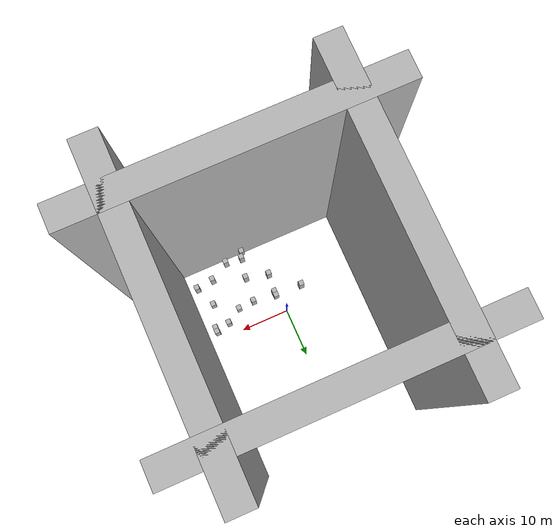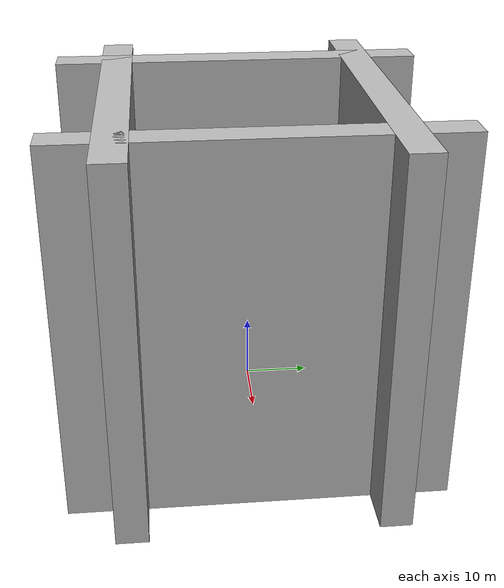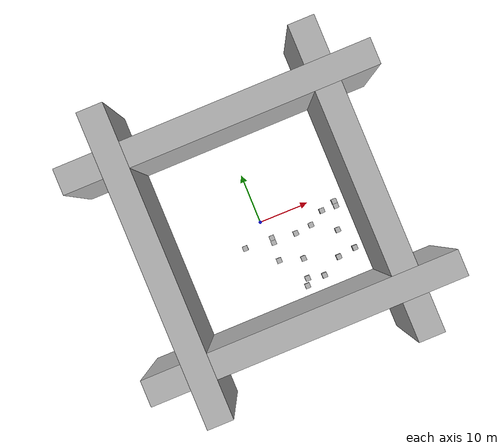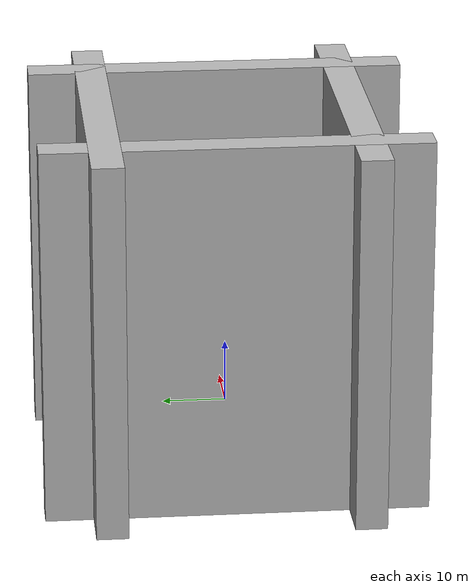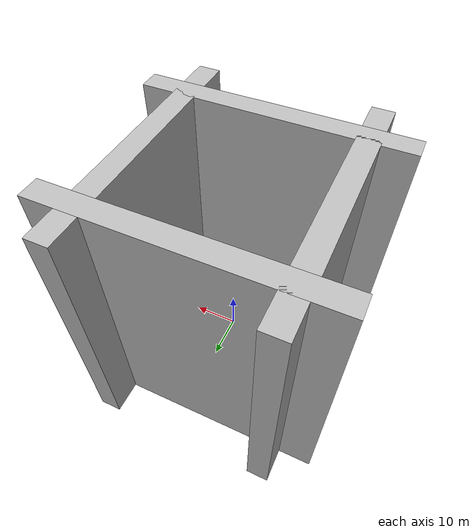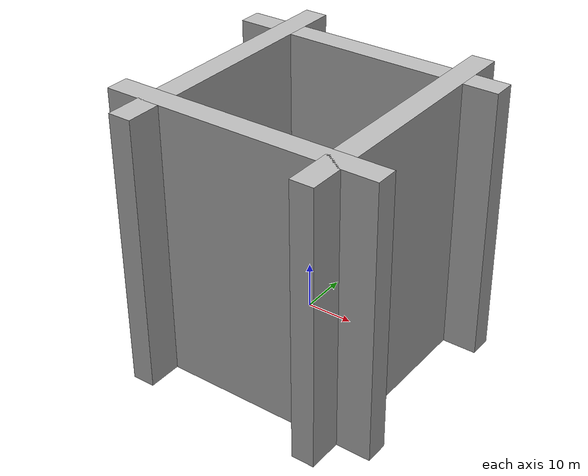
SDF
<sdf version="1.4">
 <world name="default">
  <include><uri>model://sun</uri></include>
  <model name="wall1">
   <static>1</static>
   <link name="chassis">
    <pose>-20 0 20 0 -0 0</pose>
    <collision name="collision"><geometry><box><size>5 60 60</size></box></geometry></collision>
    <visual name="visual">
     <geometry>
      <mesh><uri>model://ground_surface/meshes/simple_box.dae</uri><scale>5 60 60</scale></mesh>
     </geometry>
     <material>
      <script>
       <uri>model://ground_surface/materials/scripts</uri>
       <uri>model://ground_surface/materials/textures</uri>
       <name>BrickBox/Ground</name>
      </script>
     </material>
    </visual>
   </link>
  </model>
  <model name="wall2">
   <static>1</static>
   <link name="chassis">
    <pose>0 -20 20 0 -0 0</pose>
    <collision name="collision"><geometry><box><size>60 5 60</size></box></geometry></collision>
    <visual name="visual">
     <geometry>
      <mesh><uri>model://ground_surface/meshes/simple_box.dae</uri><scale>60 5 60</scale></mesh>
     </geometry>
     <material>
      <script>
       <uri>model://ground_surface/materials/scripts</uri>
       <uri>model://ground_surface/materials/textures</uri>
       <name>BrickBox/Ground</name>
      </script>
     </material>
    </visual>
   </link>
  </model>
  <model name="wall3">
   <static>1</static>
   <link name="chassis">
    <pose>0 20 20 0 -0 0</pose>
    <collision name="collision"><geometry><box><size>60 5 60</size></box></geometry></collision>
    <visual name="visual">
     <geometry>
      <mesh><uri>model://ground_surface/meshes/simple_box.dae</uri><scale>60 5 60</scale></mesh>
     </geometry>
     <material>
      <script>
       <uri>model://ground_surface/materials/scripts</uri>
       <uri>model://ground_surface/materials/textures</uri>
       <name>BrickBox/Ground</name>
      </script>
     </material>
    </visual>
   </link>
  </model>
  <model name="wall4">
   <static>1</static>
   <link name="chassis">
    <pose>20.0 0 20 0 -0 0</pose>
    <collision name="collision"><geometry><box><size>5 60.0 60</size></box></geometry></collision>
    <visual name="visual">
     <geometry>
      <mesh><uri>model://ground_surface/meshes/simple_box.dae</uri><scale>5 60.0 60</scale></mesh>
     </geometry>
     <material>
      <script>
       <uri>model://ground_surface/materials/scripts</uri>
       <uri>model://ground_surface/materials/textures</uri>
       <name>BrickBox/Ground</name>
      </script>
     </material>
    </visual>
   </link>
  </model>
  <model name="brick_box_2_0">
   <static>1</static>
   <link name="chassis">
    <pose>0 0 1 0 -0 0</pose>
    <collision name="collision"><geometry><box><size>1 1 2</size></box></geometry></collision>
    <visual name="visual">
     <geometry><mesh><uri>model://brick_box_2/meshes/simple_box.dae</uri><scale>1 1 2</scale></mesh></geometry>
     <material>
      <script>
       <uri>model://brick_box_2/materials/scripts</uri>
       <uri>model://brick_box_2/materials/textures</uri>
       <name>BrickBox/Flower</name>
      </script>
     </material>
    </visual>
   </link>
   <pose>15.01537 -2.67468 0 0 -0 0</pose>
  </model>
  <model name="brick_box_3_0">
   <static>1</static>
   <link name="chassis">
    <pose>-4.76455 -3.62531 2 0 -0 0</pose>
    <collision name="collision"><geometry><box><size>1 1 4</size></box></geometry></collision>
    <visual name="visual">
     <geometry><mesh><uri>model://brick_box_3/meshes/simple_box.dae</uri><scale>1 1 4</scale></mesh></geometry>
     <material>
      <script>
       <uri>model://brick_box_3/materials/scripts</uri>
       <uri>model://brick_box_3/materials/textures</uri>
       <name>BrickBox/Sea</name>
      </script>
     </material>
    </visual>
   </link>
  </model>
  <model name="brick_box_3_1">
   <static>1</static>
   <link name="chassis">
    <pose>0 0 1.5 0 -0 0</pose>
    <collision name="collision"><geometry><box><size>1 1 3</size></box></geometry></collision>
    <visual name="visual">
     <geometry><mesh><uri>model://brick_box_3/meshes/simple_box.dae</uri><scale>1 1 3</scale></mesh></geometry>
     <material>
      <script>
       <uri>model://brick_box_3/materials/scripts</uri>
       <uri>model://brick_box_3/materials/textures</uri>
       <name>BrickBox/Sea</name>
      </script>
     </material>
    </visual>
   </link>
   <pose>0.8791 -3.72445 0 0 -0 0</pose>
  </model>
  <model name="brick_box_2">
   <static>1</static>
   <link name="chassis">
    <pose>0 0 0.5 0 -0 0</pose>
    <collision name="collision"><geometry><box><size>1 1 4</size></box></geometry></collision>
    <visual name="visual">
     <geometry><mesh><uri>model://brick_box_2/meshes/simple_box.dae</uri><scale>1 1 4</scale></mesh></geometry>
     <material>
      <script>
       <uri>model://brick_box_2/materials/scripts</uri>
       <uri>model://brick_box_2/materials/textures</uri>
       <name>BrickBox/Flower</name>
      </script>
     </material>
    </visual>
   </link>
   <pose>5.60625 -4.67681 0 0 -0 0</pose>
  </model>
  <model name="brick_box_2_16">
   <static>1</static>
   <link name="chassis">
    <pose>0 0 0.5 0 -0 0</pose>
    <collision name="collision"><geometry><box><size>1 1 4</size></box></geometry></collision>
    <visual name="visual">
     <geometry><mesh><uri>model://brick_box_2/meshes/simple_box.dae</uri><scale>1 1 4</scale></mesh></geometry>
     <material>
      <script>
       <uri>model://brick_box_2/materials/scripts</uri>
       <uri>model://brick_box_2/materials/textures</uri>
       <name>BrickBox/Flower</name>
      </script>
     </material>
    </visual>
   </link>
   <pose>0.848661 -4.67849 0 0 -0 0</pose>
  </model>
  <model name="brick_box_1_2">
   <static>1</static>
   <link name="chassis">
    <pose>0 0 1.5 0 -0 0</pose>
    <collision name="collision"><geometry><box><size>1 1 3</size></box></geometry></collision>
    <visual name="visual">
     <geometry><mesh><uri>model://brick_box_1/meshes/simple_box.dae</uri><scale>1 1 3</scale></mesh></geometry>
     <material>
      <script>
       <uri>model://brick_box_1/materials/scripts</uri>
       <uri>model://brick_box_1/materials/textures</uri>
       <name>BrickBox/Diffuse</name>
      </script>
     </material>
    </visual>
   </link>
   <pose>13.51365 -7.18761 0 0 -0 0</pose>
  </model>
  <model name="brick_box_1_26">
   <static>1</static>
   <link name="chassis">
    <pose>4.35217 -13.74967 2 0 -0 0</pose>
    <collision name="collision"><geometry><box><size>1 1 4</size></box></geometry></collision>
    <visual name="visual">
     <geometry><mesh><uri>model://brick_box_1/meshes/simple_box.dae</uri><scale>1 1 4</scale></mesh></geometry>
     <material>
      <script>
       <uri>model://brick_box_1/materials/scripts</uri>
       <uri>model://brick_box_1/materials/textures</uri>
       <name>BrickBox/Diffuse</name>
      </script>
     </material>
    </visual>
   </link>
  </model>
  <model name="brick_box_3_5">
   <static>1</static>
   <link name="chassis">
    <pose>0 0 2 0 -0 0</pose>
    <collision name="collision"><geometry><box><size>1 1 4</size></box></geometry></collision>
    <visual name="visual">
     <geometry><mesh><uri>model://brick_box_3/meshes/simple_box.dae</uri><scale>1 1 4</scale></mesh></geometry>
     <material>
      <script>
       <uri>model://brick_box_3/materials/scripts</uri>
       <uri>model://brick_box_3/materials/textures</uri>
       <name>BrickBox/Sea</name>
      </script>
     </material>
    </visual>
   </link>
   <pose>0.504016 -8.36044 0 0 -0 0</pose>
  </model>
  <model name="brick_box_3_6">
   <static>1</static>
   <link name="chassis">
    <pose>0 0 1.5 0 -0 0</pose>
    <collision name="collision"><geometry><box><size>1 1 3</size></box></geometry></collision>
    <visual name="visual">
     <geometry><mesh><uri>model://brick_box_3/meshes/simple_box.dae</uri><scale>1 1 3</scale></mesh></geometry>
     <material>
      <script>
       <uri>model://brick_box_3/materials/scripts</uri>
       <uri>model://brick_box_3/materials/textures</uri>
       <name>BrickBox/Sea</name>
      </script>
     </material>
    </visual>
   </link>
   <pose>3.79789 -15.13458 0 0 -0 0</pose>
  </model>
  <model name="brick_box_3_10">
   <static>1</static>
   <link name="chassis">
    <pose>0 0 1.5 0 -0 0</pose>
    <collision name="collision"><geometry><box><size>1 1 3</size></box></geometry></collision>
    <visual name="visual">
     <geometry><mesh><uri>model://brick_box_3/meshes/simple_box.dae</uri><scale>1 1 3</scale></mesh></geometry>
     <material>
      <script>
       <uri>model://brick_box_3/materials/scripts</uri>
       <uri>model://brick_box_3/materials/textures</uri>
       <name>BrickBox/Sea</name>
      </script>
     </material>
    </visual>
   </link>
   <pose>8.98169 -4.28757 0 0 -0 0</pose>
  </model>
  <model name="brick_box_3_15">
   <static>1</static>
   <link name="chassis">
    <pose>0 0 0.5 0 -0 0</pose>
    <collision name="collision"><geometry><box><size>1 1 4</size></box></geometry></collision>
    <visual name="visual">
     <geometry><mesh><uri>model://brick_box_3/meshes/simple_box.dae</uri><scale>1 1 4</scale></mesh></geometry>
     <material>
      <script>
       <uri>model://brick_box_3/materials/scripts</uri>
       <uri>model://brick_box_3/materials/textures</uri>
       <name>BrickBox/Sea</name>
      </script>
     </material>
    </visual>
   </link>
   <pose>15.0215 -1.69596 0 0 -0 0</pose>
  </model>
  <model name="brick_box_3_16">
   <static>1</static>
   <link name="chassis">
    <pose>0 0 0.5 0 -0 0</pose>
    <collision name="collision"><geometry><box><size>1 1 4</size></box></geometry></collision>
    <visual name="visual">
     <geometry><mesh><uri>model://brick_box_3/meshes/simple_box.dae</uri><scale>1 1 4</scale></mesh></geometry>
     <material>
      <script>
       <uri>model://brick_box_3/materials/scripts</uri>
       <uri>model://brick_box_3/materials/textures</uri>
       <name>BrickBox/Sea</name>
      </script>
     </material>
    </visual>
   </link>
   <pose>15.322 -11.7631 0 0 -0 0</pose>
  </model>
  <model name="brick_box_2_21">
   <static>1</static>
   <link name="chassis">
    <pose>0 0 0.5 0 -0 0</pose>
    <collision name="collision"><geometry><box><size>1 1 4</size></box></geometry></collision>
    <visual name="visual">
     <geometry><mesh><uri>model://brick_box_2/meshes/simple_box.dae</uri><scale>1 1 4</scale></mesh></geometry>
     <material>
      <script>
       <uri>model://brick_box_2/materials/scripts</uri>
       <uri>model://brick_box_2/materials/textures</uri>
       <name>BrickBox/Flower</name>
      </script>
     </material>
    </visual>
   </link>
   <pose>7.70823 -14.5082 0 0 -0 0</pose>
  </model>
  <model name="brick_box_2_17">
   <static>1</static>
   <link name="chassis">
    <pose>0 0 0.5 0 -0 0</pose>
    <collision name="collision"><geometry><box><size>1 1 4</size></box></geometry></collision>
    <visual name="visual">
     <geometry><mesh><uri>model://brick_box_2/meshes/simple_box.dae</uri><scale>1 1 4</scale></mesh></geometry>
     <material>
      <script>
       <uri>model://brick_box_2/materials/scripts</uri>
       <uri>model://brick_box_2/materials/textures</uri>
       <name>BrickBox/Flower</name>
      </script>
     </material>
    </visual>
   </link>
   <pose>11.7021 -12.2192 0 0 -0 0</pose>
  </model>
  <model name="brick_box_1_14">
   <static>1</static>
   <link name="chassis">
    <pose>0 0 0.5 0 -0 0</pose>
    <collision name="collision"><geometry><box><size>1 1 4</size></box></geometry></collision>
    <visual name="visual">
     <geometry><mesh><uri>model://brick_box_1/meshes/simple_box.dae</uri><scale>1 1 4</scale></mesh></geometry>
     <material>
      <script>
       <uri>model://brick_box_1/materials/scripts</uri>
       <uri>model://brick_box_1/materials/textures</uri>
       <name>BrickBox/Diffuse</name>
      </script>
     </material>
    </visual>
   </link>
   <pose>12.0815 -2.49662 0 0 -0 0</pose>
  </model>
  <model name="brick_box_2_24">
   <static>1</static>
   <link name="chassis">
    <pose>0 0 0.5 0 -0 0</pose>
    <collision name="collision"><geometry><box><size>1 1 4</size></box></geometry></collision>
    <visual name="visual">
     <geometry><mesh><uri>model://brick_box_2/meshes/simple_box.dae</uri><scale>1 1 4</scale></mesh></geometry>
     <material>
      <script>
       <uri>model://brick_box_2/materials/scripts</uri>
       <uri>model://brick_box_2/materials/textures</uri>
       <name>BrickBox/Flower</name>
      </script>
     </material>
    </visual>
   </link>
   <pose>5.1402 -9.84975 0 0 -0 0</pose>
  </model>
 </world>
</sdf>
